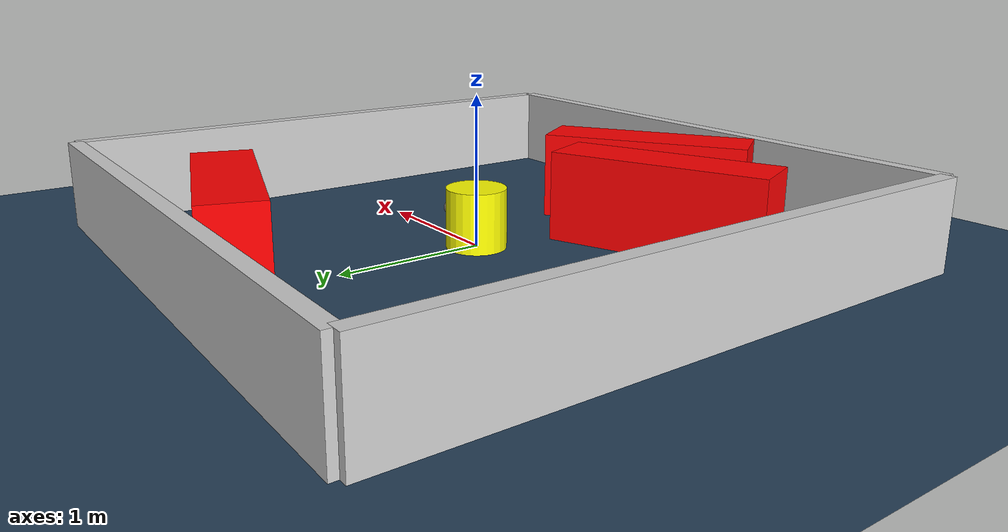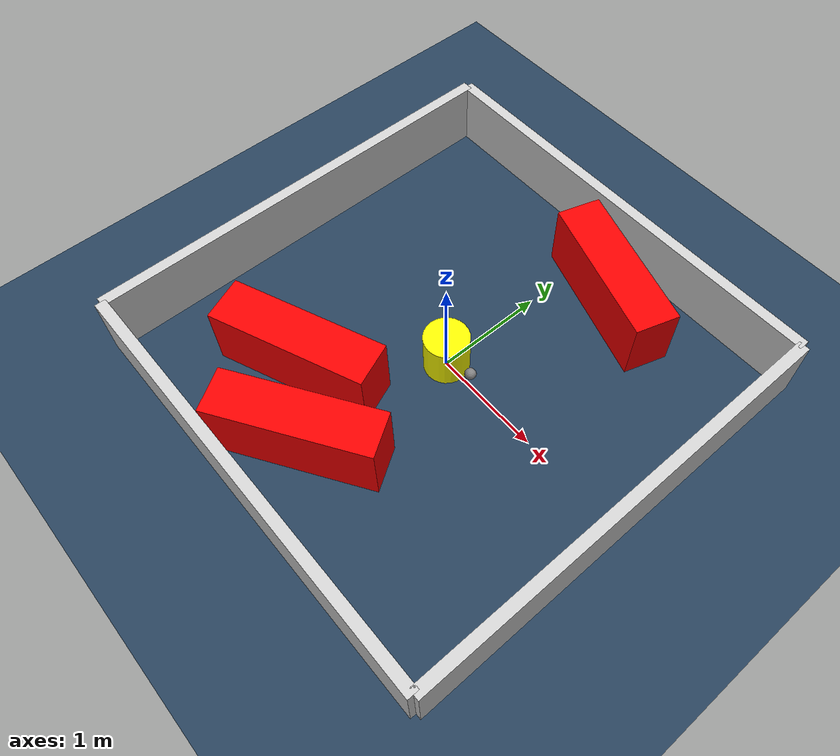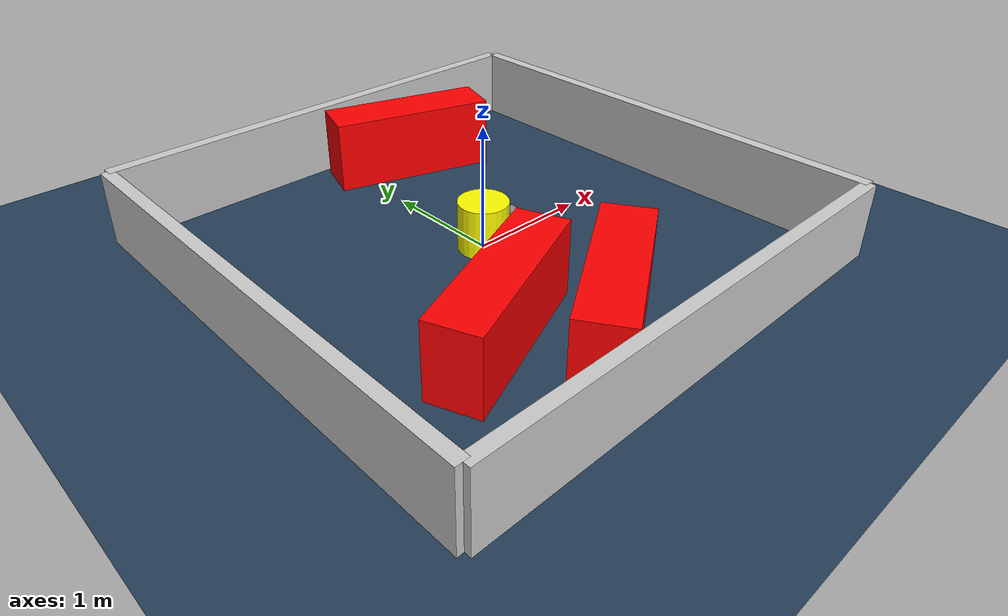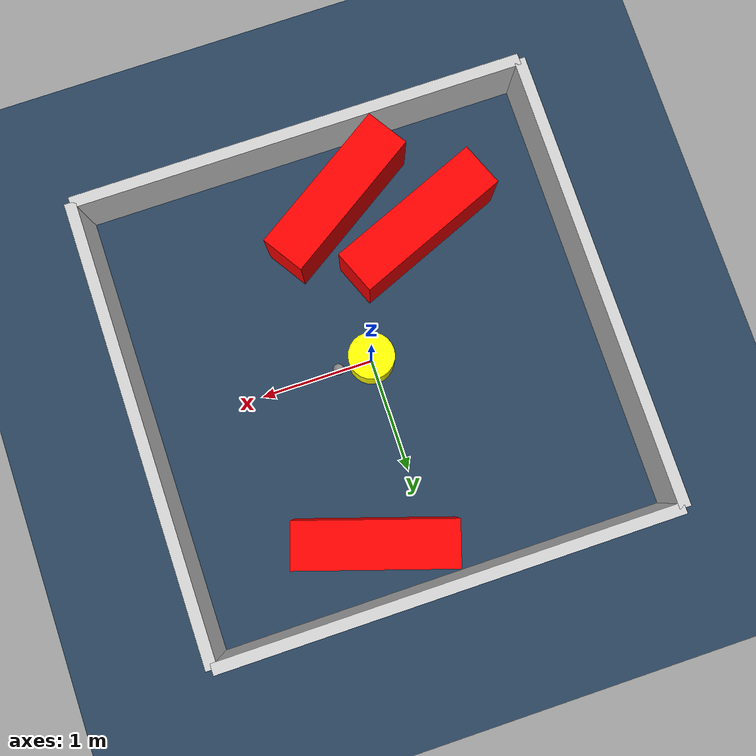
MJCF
<?xml version="1.0" ?>
<mujoco model="generated_environment">
  <option timestep="0.01" integrator="RK4" cone="elliptic"/>
  <default>
    <geom density="1"/>
  </default>
  <asset>
    <texture builtin="gradient" height="3072" rgb1="0.3 0.5 0.7" rgb2="0 0 0" type="skybox" width="512"/>
    <texture builtin="checker" height="300" mark="edge" markrgb="0.8 0.8 0.8" name="groundplane" rgb1="0.2 0.3 0.4" rgb2="0.1 0.2 0.3" type="2d" width="300"/>
    <material name="groundplane" reflectance="0.2" texrepeat="5 5" texture="groundplane" texuniform="true"/>
    <material name="robot" rgba="0.0 1.0 0.0 1"/>
  </asset>
  <worldbody>
    <light dir="0 0 -1" directional="true" pos="0 0 1.5"/>
    <geom condim="4" friction="1.0 0.005 0.001" material="groundplane" name="floor" size="0 0 0.05" type="plane"/>
    <body name="walls">
      <geom name="wall_1" condim="4" pos="-2.0 0.0 0.3" rgba="0.800000011920929 0.800000011920929 0.800000011920929 1.0" size="0.05 2.0 0.3" type="box"/>
      <geom name="wall_2" condim="4" pos="2.0 0.0 0.3" rgba="0.800000011920929 0.800000011920929 0.800000011920929 1.0" size="0.05 2.0 0.3" type="box"/>
      <geom name="wall_3" condim="4" pos="0.0 -2.0 0.3" rgba="0.800000011920929 0.800000011920929 0.800000011920929 1.0" size="2.0 0.05 0.3" type="box"/>
      <geom name="wall_4" condim="4" pos="0.0 2.0 0.3" rgba="0.800000011920929 0.800000011920929 0.800000011920929 1.0" size="2.0 0.05 0.3" type="box"/>
    </body>
    <body name="robot">
      <joint name="joint_x" type="slide" pos="0 0 0" axis="1 0 0"/>
      <joint name="joint_y" type="slide" pos="0 0 0" axis="0 1 0"/>
      <geom name="robot" type="sphere" pos="0.3 0.0 0.2" size="0.05" mass="5." friction="1.0 0.005 0.0001" condim="4" rgba="0.5 0.5 0.5 1.0"/>
      <site name="sensor_ball"/>
    </body>
    <body name="obstacle_movable_1">
      <geom name="obstacle_movable_1" condim="4" pos="0.0 0.0 0.2" euler="0 0 0.0" friction="1.0 0.005 0.001" rgba="1.0 1.0 0.0 1.0" size="0.2 0.2 0.0" type="cylinder" mass="0.1"/>
      <joint type="free"/>
    </body>
    <body name="obstacle_2_static">
      <geom name="obstacle_2_static" condim="4" pos="-0.14580642029972224 -1.395189634811739 0.3" euler="0 0 212.903021117763" friction="1.0 0.005 0.001" rgba="1 0 0 1" size="0.7055737414523671 0.2 0.3" type="box"/>
    </body>
    <body name="obstacle_3_static">
      <geom name="obstacle_3_static" condim="4" pos="0.46189528482684294 1.4872473701178588 0.3" euler="0 0 162.2829306578405" friction="1.0 0.005 0.001" rgba="1 0 0 1" size="0.6864352916874333 0.2 0.3" type="box"/>
    </body>
    <body name="obstacle_4_static">
      <geom name="obstacle_4_static" condim="4" pos="-0.7339995981525657 -0.9526798484613084 0.3" euler="0 0 22.27314885318293" friction="1.0 0.005 0.001" rgba="1 0 0 1" size="0.7131820763665346 0.2 0.3" type="box"/>
    </body>
  </worldbody>
  <actuator>
    <motor name="actuator_x" joint="joint_x" gear="1" ctrlrange="-1 1"/>
    <motor name="actuator_y" joint="joint_y" gear="1" ctrlrange="-1 1"/>
  </actuator>
</mujoco>
